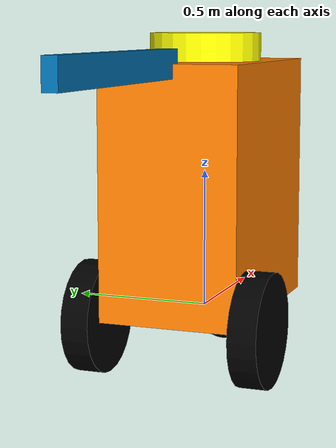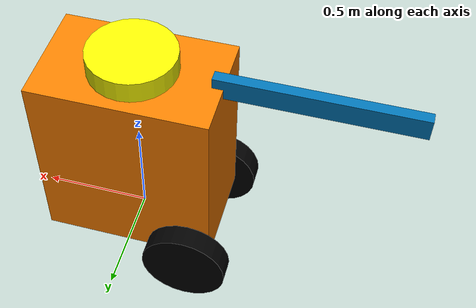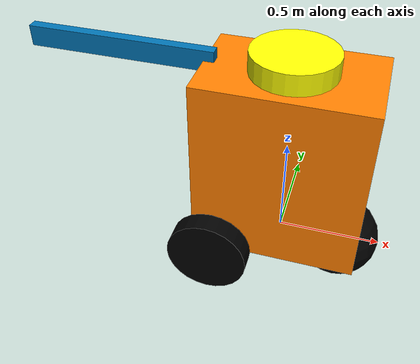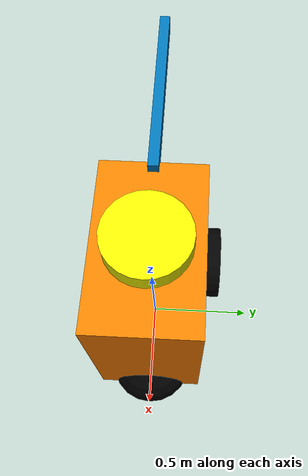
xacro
<?xml version="1.0"?>
<robot xmlns:xacro="https://www.ros.org/wiki/xacro" name="myrobot">
  <xacro:property name="base_length" value="0.8" />
  <xacro:property name="base_width" value="0.5" />
  <xacro:property name="base_height" value="0.9" />
  <xacro:property name="radius1" value="0.2" />
  <xacro:property name="laser_width" value="0.1" />
  <xacro:property name="wheel_radius" value="0.2" />
  <xacro:property name="wheel_thickness" value="0.1" />
  <xacro:property name="wheel_offset" value="0.1" />
  <xacro:property name="arm1_length" value="0.9" />
  <xacro:property name="arm1_width" value="0.05" />
  <xacro:property name="arm1_height" value="0.1" />

  <xacro:macro name="inertial_sphere" params="mass radius *origin">
    <inertial>
      <xacro:insert_block name="origin" />
      <mass value="${mass}" />
      <inertia ixx="${(2/5) * mass * (radius*radius)}" ixy="0.0" ixz="0.0"
        iyy="${(2/5) * mass * (radius*radius)}" iyz="0.0"
        izz="${(2/5) * mass * (radius*radius)}" />
    </inertial>
  </xacro:macro>

  <xacro:macro name="inertial_box" params="mass x y z *origin">
    <inertial>
      <xacro:insert_block name="origin" />
      <mass value="${mass}" />
      <inertia ixx="${(1/12) * mass * (y*y+z*z)}" ixy="0.0" ixz="0.0"
        iyy="${(1/12) * mass * (x*x+z*z)}" iyz="0.0"
        izz="${(1/12) * mass * (x*x+y*y)}" />
    </inertial>
  </xacro:macro>

  <xacro:macro name="inertial_cylinder" params="mass length radius *origin">
    <inertial>
      <xacro:insert_block name="origin" />
      <mass value="${mass}" />
      <inertia ixx="${(1/12) * mass * (3*radius*radius + length*length)}" ixy="0.0" ixz="0.0"
        iyy="${(1/12) * mass * (3*radius*radius + length*length)}" iyz="0.0"
        izz="${(1/2) * mass * (radius*radius)}" />
    </inertial>
  </xacro:macro>

  <material name="Orange">
    <color rgba="1 0.5 0 1" />
  </material>
  <material name="yellow">
    <color rgba="1 1 0 1" />
  </material>
  <material name="black">
    <color rgba="0 0 0 1" />
  </material>

  <link name="base_link">
    <visual>
      <origin xyz="0 0 ${base_height/2}" rpy="0 0 0" />
      <geometry>
        <box size="${base_length} ${base_width} ${base_height}" />
      </geometry>
      <material name="Orange" />
    </visual>
    <collision>
      <origin xyz="0 0 ${base_height/2}" rpy="0 0 0" />
      <geometry>
        <box size="${base_length} ${base_width} ${base_height}" />
      </geometry>
    </collision>
    <xacro:inertial_box mass="0.3" x="${base_length}" y="${base_width}" z="${base_height}">
      <origin xyz="0 0 0" rpy="0 0 0" />
    </xacro:inertial_box>
  </link>

  <gazebo reference="base_link">
    <material>Gazebo/Orange</material>
  </gazebo>

  <link name="laser_link">
    <visual>
      <origin xyz="0 0 0" rpy="0 0 0" />
      <geometry>
        <cylinder length="${laser_width}" radius="${radius1}" />
      </geometry>
      <material name="yellow" />
    </visual>
  </link>

  <gazebo reference="laser_link">
    <material>Gazebo/Yellow</material>
  </gazebo>

  <joint name="base_laser_joint" type="fixed">
    <origin xyz="0 0 ${base_height + laser_width/2}" rpy="0 0 0" />
    <parent link="base_link" />
    <child link="laser_link" />
  </joint>

  <link name="left_wheel">
    <visual>
      <origin xyz="0 0 0" />
      <geometry>
        <cylinder length="${wheel_thickness}" radius="${wheel_radius}" />
      </geometry>
      <material name="black" />
    </visual>
  </link>

  <joint name="left_wheel_joint" type="continuous">
    <origin xyz="-${base_length/2-wheel_offset} -${base_width/2+wheel_thickness/2} 0"
      rpy="${pi/2} 0 0" />
    <parent link="base_link" />
    <child link="left_wheel" />
    <axis xyz="0 0 1" />
  </joint>

  <link name="right_wheel">
    <visual>
      <origin xyz="0 0 0" />
      <geometry>
        <cylinder length="${wheel_thickness}" radius="${wheel_radius}" />
      </geometry>
      <material name="black" />
    </visual>
  </link>

  <joint name="right_wheel_joint" type="continuous">
    <origin xyz="-${base_length/2-wheel_offset} ${base_width/2+wheel_thickness/2} 0"
      rpy="${pi/2} 0 0" />
    <parent link="base_link" />
    <child link="right_wheel" />
    <axis xyz="0 0 1" />
  </joint>

  <link name="arm1">
    <visual>
      <origin xyz="-${base_length/2} 0 0" />
      <geometry>
        <box size="${arm1_length} ${arm1_width} ${arm1_height}" />
      </geometry>
    </visual>
  </link>
  <joint name="arm1_joint" type="revolute">
    <origin xyz="-${base_length/2} 0 ${base_height}" rpy="0 0 0" />
    <parent link="base_link" />
    <child link="arm1" />
    <axis xyz="0 1 0" />
    <limit lower="${-pi/6}" upper="${pi/6}" effort="100" velocity="100" />
  </joint>

  <link name="rear_wheel">
    <visual>
      <geometry>
        <sphere radius="${wheel_radius}" />
      </geometry>
      <material name="black" />
    </visual>
  </link>

  <joint name="rear_wheel_joint" type="fixed">
    <origin xyz="${base_length/2-wheel_offset} 0 0" rpy="0 0 0" />
    <parent link="base_link"/>
    <child link="rear_wheel"/>
  </joint>

</robot>
